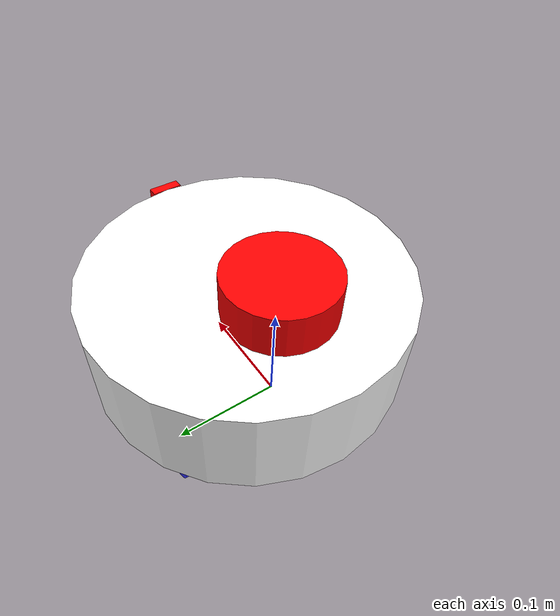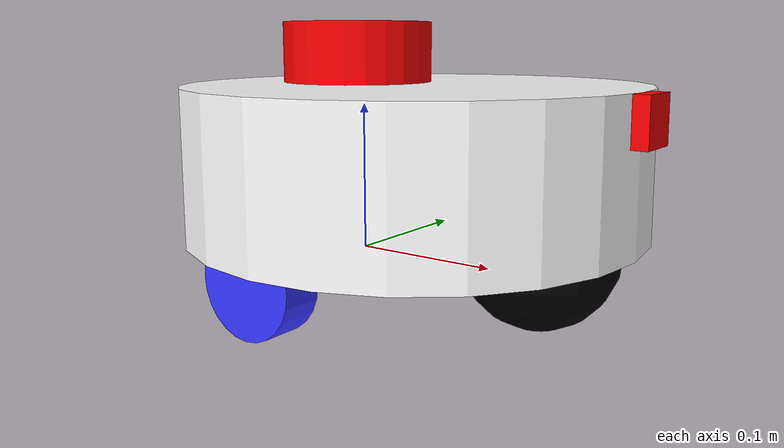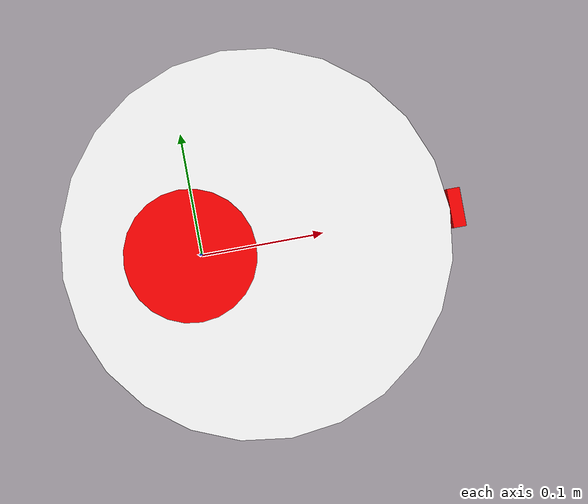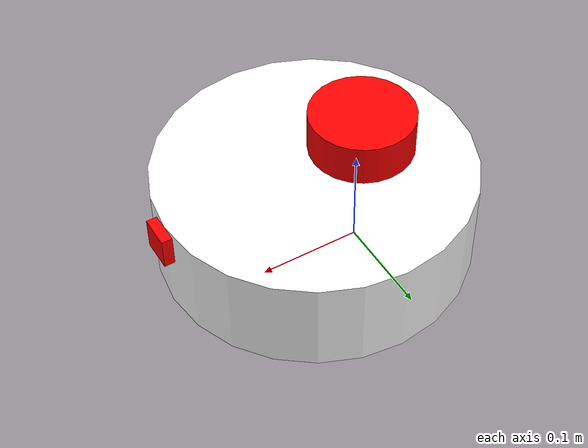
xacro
<?xml version="1.0"?>
<robot xmlns:xacro="http://www.ros.org/wiki/xacro"  name="robot">

    <xacro:arg name="use_ros2_control" default="false"/>

    <xacro:include filename="man1_core.xacro"/>

    <xacro:if value= "$(arg use_ros2_control)">
        <xacro:include filename="ros2_control.xacro"/>
    </xacro:if>

    <xacro:unless value= "$(arg use_ros2_control)">
        <xacro:include filename="gazebo_control.xacro"/>
    </xacro:unless>

    <!-- We will be using ros2_control and therefore commeting the gazebo_control for now -->

    <xacro:include filename="lidar.xacro"/>

    <xacro:include filename="camera.xacro"/>

</robot>

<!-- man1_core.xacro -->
<robot xmlns:xacro="http://www.ros.org/wiki/xacro">

    <xacro:include filename='inertial_macros.xacro'/>

    <material name="white">
        <color rgba="1 1 1 1"/>
    </material>

    <material name="orenge">
        <color rgba="1 0.3 0.1 1"/>
    </material>

    <material name="blue">
        <color rgba="0.2 0.2 1 1"/>
    </material>

    <material name="black">
        <color rgba="0 0 0 1"/>
    </material>

    <material name="red">
        <color rgba="1 0 0 1"/>
    </material>

    <link name="base_link">

    </link>

    <!-- The base link will sit at the center of the two drive wheels(like the center of the drive rod) -->
    <!-- Here the chassis origin will be the back-bottom-center. ie: behind the drive wheels -->
    <joint name="chassis_joint" type="fixed">
        <parent link="base_link"/>
        <child link="chassis_link"/>
        <!-- The base_link is -0.1 in x to the chassis_link -->
        <origin xyz="-0.105 0.0 0.02"/>
    </joint>

    <link name="chassis_link">
        <visual>
            <origin xyz= "0.15 0 0.0475"/>
            <geometry>
                <cylinder radius="0.15" length="0.095"/>
            </geometry>
            <material name="white"/>
        </visual>
        <collision>
            <origin xyz= "0.15 0 0.0475"/>
            <geometry>
                <cylinder radius="0.15" length="0.095"/>
            </geometry>
            <material name="white"/>
        </collision>
        <xacro:inertial_cylinder mass='0.2' length='0.095' radius='0.15'>
            <origin xyz='0.15 0 0.0475' rpy='0 0 0'/>
        </xacro:inertial_cylinder>
        <gazebo reference="chassis_link">
            <material>Gazebo/white</material>
        </gazebo>

    </link>

    <!-- Left Wheel Link -->
    <joint name="left_wheel_joint" type="continuous">
        <parent link="base_link"/>
        <child link="left_wheel"/>
        <!-- Origin 0.1 away on Y, The origin of a cylinder will default be oriented on Z access. So we roll the cylinder
        90degrees around the X axix. that is roll. -->
        <origin xyz="0 0.1 0" rpy="-${pi/2} 0.0 0.0"/>
        <!-- axis is rotating around the Z axis. When we have a positive motions on the wheel -->
        <axis xyz="0.0 0.0 1"/>
    </joint>

    <link name="left_wheel">
        <visual>
            <geometry>
                <cylinder radius="0.035" length="0.026"/>
            </geometry>
            <material name="blue"/>
        </visual>
        <collision>
            <geometry>
                <cylinder radius="0.035" length="0.026"/>
            </geometry>
            <material name="blue"/>
        </collision>
        <xacro:inertial_cylinder mass='0.1' length='0.026' radius='0.035'>
            <origin xyz='0 0 0' rpy='0 0 0'/>
        </xacro:inertial_cylinder>
    </link>
    <!-- adding a gazebo referebnce to the material/color -->
    <gazebo reference="left_wheel">
        <material>Gazebo/Blue</material>
    </gazebo>

    <!-- Right Wheel Link -->
    <joint name="right_wheel_joint" type="continuous">
        <parent link="base_link"/>
        <child link="right_wheel"/>
        <origin xyz="0 -0.1 0" rpy="${pi/2} 0.0 0.0"/>
        <!-- axis is rotating around the -Z axis. When we have a positive motions on the wheel -->
        <axis xyz="0.0 0.0 -1"/>
    </joint>

    <link name="right_wheel">
        <visual>
            <geometry>
                <cylinder radius="0.035" length="0.026"/>
            </geometry>
            <material name="blue"/>
        </visual>
        <collision>
            <geometry>
                <cylinder radius="0.035" length="0.026"/>
            </geometry>
            <material name="blue"/>
        </collision>
        <xacro:inertial_cylinder mass='0.1' length='0.026' radius='0.035'>
            <origin xyz='0 0 0' rpy='0 0 0'/>
        </xacro:inertial_cylinder>
    </link>
    <!-- adding a gazebo referebnce to the material/color -->
    <gazebo reference="right_wheel">
        <material>Gazebo/Blue</material>
    </gazebo>

    <!-- Caster Wheel -->
    <joint name="caster_wheel_joint" type="fixed">
        <parent link="chassis_link"/>
        <child link="caster_wheel"/>
        <origin xyz="0.24 0 0"/>
    </joint>

    <link name="caster_wheel">
        <visual>
            <geometry>
                <sphere radius="0.05"/>
            </geometry>
            <material name="black"/>
        </visual>
        <collision>
            <geometry>
                <sphere radius="0.05"/>
            </geometry>
            <material name="black"/>
        </collision>
        <xacro:inertial_sphere mass='0.1' radius='0.05'>
            <origin xyz='0 0 0' rpy='0 0 0'/>
        </xacro:inertial_sphere>
    </link>
    <!-- adding a gazebo referebnce to the material/color -->
    <gazebo reference="caster_wheel">
        <material>Gazebo/Black</material>

        <!-- Setting the friction of the caster wheel to a minimum value -->
        <mu1 value="0.0001"/>
        <mu2 value="0.0001"/>

    </gazebo>

</robot>

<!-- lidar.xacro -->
<robot xmlns:xacro="http://www.ros.org/wiki/xacro">

    <joint name="laser_joint" type="fixed">
        <parent link="chassis_link"/>
        <child link="laser_frame"/>
        <!-- laser frame is 100cm in front the chassis origin  -->
        <origin xyz="0.1 0 0.115 " rpy="0 0 0"/>
    </joint>

    <link name="laser_frame">
        <visual>
            <geometry>
                <cylinder radius="0.05" length="0.04"/>
            </geometry>
            <material name="red"/>
        </visual>
        <collision>
            <geometry>
                <cylinder radius="0.05" length="0.04"/>
            </geometry>
            <material name="red"/>
        </collision>
        <xacro:inertial_cylinder mass='0.1' length='0.04' radius='0.05'>
            <origin xyz='0 0 0' rpy='0 0 0'/>
        </xacro:inertial_cylinder>
    </link>

    <gazebo reference="laser_frame">
        <sensor name="laser" type="ray">
            <pose>0 0 0 0 0 0</pose>
            <visualize>false</visualize>
            <!-- update at 10Hz -->
            <update_rate>10</update_rate>
            <ray><pose>0 0 0 0 0 0</pose>
                <scan>
                    <horizontal>
                        <samples>360</samples>
                        <resolution>1</resolution>
                        <min_angle>-3.14</min_angle>
                        <max_angle>3.14</max_angle>
                    </horizontal>
                </scan>
                <range>
                    <min>0.3</min>
                    <max>12</max>
                    <resolution>0.01</resolution>
                </range>
            </ray>
            <plugin name="laser_controller" filename="libgazebo_ros_ray_sensor.so">
                <ros>
                    <!-- published on topic-->
                    <argument>~/out:=scan</argument>
                </ros>
                <!-- published msg type -->
                <output_type>sensor_msgs/LaserScan</output_type>
                <frame_name>laser_frame</frame_name>
            </plugin>

        </sensor>
        <material>Gazebo/Red</material>
    </gazebo>

</robot>

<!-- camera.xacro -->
<robot xmlns:xacro="http://www.ros.org/wiki/xacro">

    <joint name="camera_joint" type="fixed">
        <parent link="chassis_link"/>
        <child link="camera_frame"/>
        <!-- camera frame is 300cm in front the chassis origin + a 5mm for the camera casing -->
        <origin xyz="0.305 0 0.08 " rpy="0 0 0"/>
    </joint>

    <link name="camera_frame">
        <visual>
            <geometry>
                <box size="0.010 0.03 0.03" />
            </geometry>
            <material name="red"/>
        </visual>
        <!-- the collision and inertial components are not applied and goint to be ignored for now as its a very small camera -->
    </link>

    <!-- the joint/link to convert from the ROS cordinate system to the general vision cordinate system. -->
    <joint name="camera_optical_joint" type="fixed">
        <parent link="camera_frame"/>
        <child link="camera_frame_optical"/>
        <!-- camera frame is 300cm in front the chassis origin + a 5mm for the camera casing -->
        <origin xyz="0 0 0" rpy="${-pi/2} 0 ${-pi/2}"/>
    </joint>

    <link name="camera_frame_optical"></link>

    <gazebo reference="camera_frame">
        <material>Gazebo/Red</material>
        <sensor name="camera" type="camera">
            <pose>0 0 0 0 0 0</pose>
            <visualize>true</visualize>
            <update_rate>10</update_rate>
            <camera>
                <horizontal_fov>1.089</horizontal_fov>
                <image>
                    <format>R8G8B8</format>
                    <width>640</width>
                    <height>480</height>
                </image>
                <clip>
                    <near>0.05</near>
                    <far>8</far>
                </clip>
            </camera>
            <plugin name="camera_controller" filename="libgazebo_ros_camera.so">
                <frame_name>camera_frame_optical</frame_name>
            </plugin>
        </sensor>

    </gazebo>

</robot>
